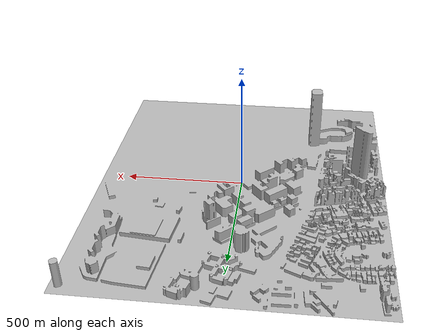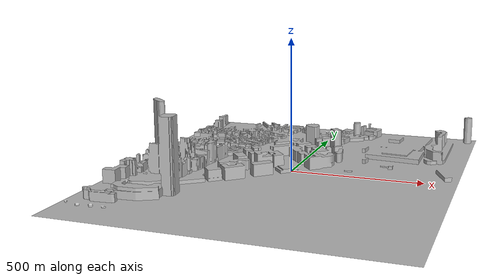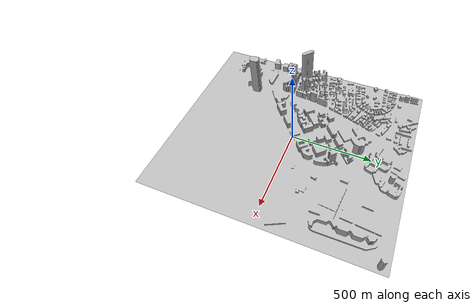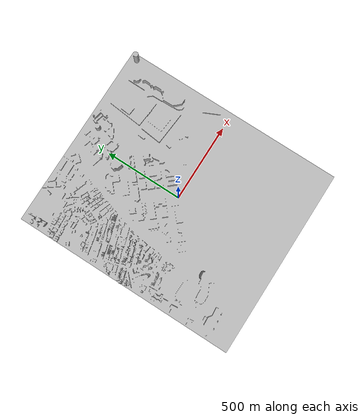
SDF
<sdf version='1.7'>
  <world name='default'>
    <light name='sun' type='directional'>
      <cast_shadows>1</cast_shadows>
      <pose>0 0 10 0 -0 0</pose>
      <diffuse>0.8 0.8 0.8 1</diffuse>
      <specular>0.2 0.2 0.2 1</specular>
      <attenuation>
        <range>1000</range>
        <constant>0.9</constant>
        <linear>0.01</linear>
        <quadratic>0.001</quadratic>
      </attenuation>
      <direction>-0.5 0.1 -0.9</direction>
      <spot>
        <inner_angle>0</inner_angle>
        <outer_angle>0</outer_angle>
        <falloff>0</falloff>
      </spot>
    </light>
    <gravity>0 0 -9.8</gravity>
    <magnetic_field>6e-06 2.3e-05 -4.2e-05</magnetic_field>
    <atmosphere type='adiabatic'/>
    <physics type='ode'>
      <max_step_size>0.001</max_step_size>
      <real_time_factor>1</real_time_factor>
      <real_time_update_rate>1000</real_time_update_rate>
    </physics>
    <scene>
      <ambient>0.9 0.9 0.9 1</ambient>
      <background>0.7 0.7 0.7 1</background>
      <shadows>1</shadows>
    <sky>
    <clouds>
      <speed>12</speed>
    </clouds>
    </sky>
    </scene>
    <include>
      <uri>model://hong_kong</uri>
    </include>

    <model name="laser_0">
      <static>false</static>
      <pose>20 20 1 0 0 0</pose>
      <link name="laser_link">
        <visual name="laser_visual">
          <geometry>
            <box>
              <size>5 2 2</size>
            </box>
          </geometry>
          <material>
            <ambient>0 0 0 1</ambient>
            <diffuse>0 0 0 1</diffuse>
            <specular>0 0 0 0</specular>
            <emissive>1 1 0 1</emissive>
          </material>
        </visual>
        <collision name='laser_collision'>
          <laser_retro>0</laser_retro>
          <max_contacts>10</max_contacts>
          <pose>0 0 0 0 -0 0</pose>
          <geometry>
            <box>
              <size>0.2 .1 .1</size>
            </box>
          </geometry>
        </collision>
        <sensor name="camera" type="wideanglecamera">
          <pose>0 0 2.1 0 -1.5707 0</pose>
          <camera>
            <horizontal_fov>3.1415</horizontal_fov>
            <image>
              <width>500</width>
              <height>500</height>
            </image>
            <clip>
              <near>0.1</near>
              <far>100</far>
            </clip>
            <lens>
              <type>stereographic</type>
              <scale_to_hfov>true</scale_to_hfov>
              <cutoff_angle>3.1415</cutoff_angle>
              <env_texture_size>512</env_texture_size>
            </lens>
          </camera>
          <always_on>1</always_on>
          <update_rate>30</update_rate>
          <plugin name="skycam_controller" filename="libgazebo_ros_camera.so">
            <alwaysOn>true</alwaysOn>
            <updateRate>0.0</updateRate>
            <cameraName>skycam</cameraName>
            <imageTopicName>image_raw</imageTopicName>
            <cameraInfoTopicName>camera_info</cameraInfoTopicName>
            <frameName>camera_link</frameName>
            <hackBaseline>0.07</hackBaseline>
            <distortionK1>0.0</distortionK1>
            <distortionK2>0.0</distortionK2>
            <distortionK3>0.0</distortionK3>
            <distortionT1>0.0</distortionT1>
            <distortionT2>0.0</distortionT2>
          </plugin>
        </sensor>
        <sensor name="laser" type="ray">
          <pose>0 0 2.1 0 0 0</pose>
          <visualize>false</visualize>
          <update_rate>10</update_rate>
          <ray>
            <scan>
              <horizontal>
                <samples>16</samples>
                <resolution>1</resolution>
                <min_angle>0</min_angle>
                <max_angle>0</max_angle>
              </horizontal>
              <vertical>
                <samples>1</samples>
                <resolution>1</resolution>
                <min_angle>0.8</min_angle>
                <max_angle>0.8</max_angle>
              </vertical>
            </scan>
            <range>
              <min>0.05</min>
              <max>100.0</max>
              <resolution>0.02</resolution>
            </range>
            <noise>
              <type>gaussian</type>
              <mean>0.0</mean>
              <stddev>0.0</stddev>
            </noise>
          </ray>
          <plugin name="Multipath Plugin" filename="libMultipathSensorPlugin.so">
            <topicName>/multipath/scan</topicName>
            <offsetTopicName>/multipath/offset</offsetTopicName>
            <satRayTopicName>/multipath/sat_ray</satRayTopicName>
            <frameName>laser_0</frameName>
            <errorScale>1</errorScale>
            <disableNoise>1</disableNoise>
            <satNum>8</satNum>
            <satAzimuth>2.9359 3.3952 5.5647 0.2379 4.0208 1.3869 2.2305 0.6545</satAzimuth>
            <satElevation>0.7836 0.3240 1.0243 0.9085 0.4755 0.2695 1.0933 0.3891</satElevation>
          </plugin>
        </sensor>
        <self_collide>0</self_collide>
      </link>
    </model>
    <gui>
      <camera name="user_camera">
        <projection_type>orthographic</projection_type>
        <pose>1.5 -1.25 0 0 1.578 0</pose>
      </camera>
    </gui>
    <gui fullscreen='0'>
      <camera name='user_camera'>
        <pose>0 0 3000 0 1.57 0</pose>
        <view_controller>orbit</view_controller>
        <projection_type>perspective</projection_type>
      </camera>
    </gui>
  </world>
</sdf>
<!-- vim: set et ft=xml fenc=utf-8 ff=unix sts=0 sw=2 ts=2 : -->

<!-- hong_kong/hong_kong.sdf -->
<sdf version="1.5">
  <model name="hong_kong">
    <pose>0 0 0 0 0 0</pose>
    <static>true</static>
    <link name="terrain">
      <visual name="visual">
        <geometry>
          <mesh><uri>model://hong_kong/media/terrain.dae</uri></mesh>
        </geometry>
        <pose>0 0 -3.5 0 0 0</pose>
      </visual>
      <collision name="collision">
        <geometry>
          <mesh><uri>model://hong_kong/media/terrain.dae</uri></mesh>
        </geometry>
        <pose>0 0 -3.5 0 0 0</pose>
      </collision>
    </link>

    <link name="buildings">
      <visual name="visual">
        <geometry>
          <mesh><uri>model://hong_kong/media/buildings.dae</uri></mesh>
        </geometry>
        <pose>0 0 -3.5 0 0 0</pose>
      </visual>
      <collision name="collision">
        <geometry>
          <mesh><uri>model://hong_kong/media/buildings.dae</uri></mesh>
        </geometry>
        <pose>0 0 -3.5 0 0 0</pose>
      </collision>
    </link>
  </model>
</sdf>
